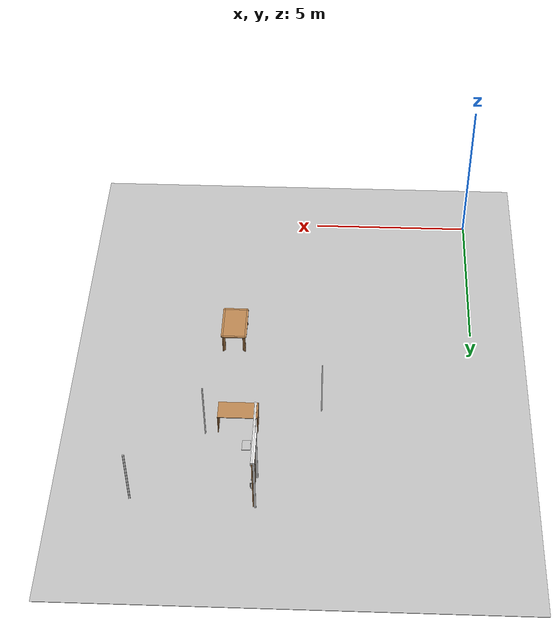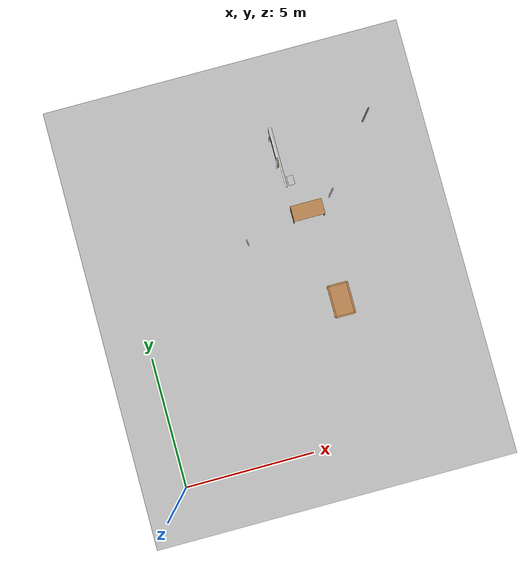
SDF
<sdf version="1.6">
 <world name="apartment">
  <model name="gplane">
   <pose>5.0375 6.59 0 0 -0 0</pose>
   <link name="body">
    <collision name="gplane_coll">
     <geometry><plane><normal>0 0 1</normal><size>10.075 13.18</size></plane></geometry>
     <surface><contact><ode><kp>1e+06</kp><kd>1</kd></ode></contact></surface>
     <laser_retro>2000</laser_retro>
    </collision>
    <visual name="gplane_vis">
     <geometry><plane><normal>0 0 1</normal><size>10.075 13.18</size></plane></geometry>
     <material>
      <script>
       <uri>model://base_materials/carpet/scripts</uri>
       <uri>model://base_materials/carpet/textures</uri>
       <name>carpet/carpet01</name>
      </script>
     </material>
     <cast_shadows>0</cast_shadows>
    </visual>
    <velocity_decay><linear>0</linear><angular>0</angular></velocity_decay>
   </link>
   <static>1</static>
  </model>
  <model name="door_stopper_x13y13">
   <link name="door_frame">
    <visual name="stopper">
     <pose>0.0225 0.0175 1.025 0 -0 0</pose>
     <geometry><box><size>0.01 0.035 2.05</size></box></geometry>
     <material>
      <script><uri>model://base_materials/color/scripts</uri><name>hsr_color/white</name></script>
     </material>
    </visual>
    <collision name="collision_frame_1">
     <pose>0.0225 0.0175 1.025 0 -0 0</pose>
     <geometry><box><size>0.01 0.035 2.05</size></box></geometry>
    </collision>
    <visual name="frame_2">
     <pose>-0.0225 0.0175 1.025 0 -0 0</pose>
     <geometry><box><size>0.01 0.035 2.05</size></box></geometry>
     <material>
      <script><uri>model://base_materials/color/scripts</uri><name>hsr_color/white</name></script>
     </material>
    </visual>
    <collision name="collision_frame_2">
     <pose>-0.0225 0.0175 1.025 0 -0 0</pose>
     <geometry><box><size>0.01 0.035 2.05</size></box></geometry>
    </collision>
   </link>
   <static>1</static>
   <pose>10.1025 11.67 0 0 -0 0</pose>
  </model>
  <model name="door_stopper_x08y09a">
   <link name="door_frame">
    <visual name="stopper">
     <pose>0.0225 0.0175 1.025 0 -0 0</pose>
     <geometry><box><size>0.01 0.035 2.05</size></box></geometry>
     <material>
      <script><uri>model://base_materials/color/scripts</uri><name>hsr_color/white</name></script>
     </material>
    </visual>
    <collision name="collision_frame_1">
     <pose>0.0225 0.0175 1.025 0 -0 0</pose>
     <geometry><box><size>0.01 0.035 2.05</size></box></geometry>
    </collision>
    <visual name="frame_2">
     <pose>-0.0225 0.0175 1.025 0 -0 0</pose>
     <geometry><box><size>0.01 0.035 2.05</size></box></geometry>
     <material>
      <script><uri>model://base_materials/color/scripts</uri><name>hsr_color/white</name></script>
     </material>
    </visual>
    <collision name="collision_frame_2">
     <pose>-0.0225 0.0175 1.025 0 -0 0</pose>
     <geometry><box><size>0.01 0.035 2.05</size></box></geometry>
    </collision>
   </link>
   <static>1</static>
   <pose>4.675 8.23 0 0 -0 1.5708</pose>
  </model>
  <model name="door_x08y13">
   <joint name="frame_to_world_joint" type="revolute">
    <parent>world</parent>
    <child>frame</child>
    <axis>
     <xyz>0 0 1</xyz>
     <limit><upper>0</upper><lower>0</lower></limit>
     <use_parent_model_frame>1</use_parent_model_frame>
     <dynamics><spring_reference>0</spring_reference><spring_stiffness>0</spring_stiffness></dynamics>
    </axis>
   </joint>
   <link name="frame">
    <inertial>
     <mass>50</mass>
     <inertia><ixx>1</ixx><ixy>0</ixy><ixz>0</ixz><iyy>1</iyy><iyz>0</iyz><izz>1</izz></inertia>
    </inertial>
    <visual name="right_frame">
     <pose>0 0.5325 0.995 0 -0 0</pose>
     <geometry><box><size>0.055 0.035 1.99</size></box></geometry>
     <material>
      <script><uri>model://base_materials/color/scripts</uri><name>hsr_color/white</name></script>
     </material>
    </visual>
    <collision name="collision_right_frame">
     <pose>0 0.5325 0.995 0 -0 0</pose>
     <geometry><box><size>0.055 0.035 1.99</size></box></geometry>
    </collision>
    <visual name="left_frame">
     <pose>0 -0.5325 0.995 0 -0 0</pose>
     <geometry><box><size>0.055 0.035 1.99</size></box></geometry>
     <material>
      <script><uri>model://base_materials/color/scripts</uri><name>hsr_color/white</name></script>
     </material>
    </visual>
    <collision name="collision_left_frame">
     <pose>0 -0.5325 0.995 0 -0 0</pose>
     <geometry><box><size>0.055 0.035 1.99</size></box></geometry>
    </collision>
    <visual name="top_frame">
     <pose>0 0 2.04 0 -0 0</pose>
     <geometry><box><size>0.055 1.1 0.1</size></box></geometry>
     <material>
      <script><uri>model://base_materials/color/scripts</uri><name>hsr_color/white</name></script>
     </material>
    </visual>
    <collision name="collision_top_frame">
     <pose>0 0 2.04 0 -0 0</pose>
     <geometry><box><size>0.055 1.1 0.1</size></box></geometry>
    </collision>
    <visual name="top_guard">
     <pose>0.05 -0.55 2.065 0 -0 0</pose>
     <geometry><box><size>0.045 2.2 0.05</size></box></geometry>
     <material>
      <script><uri>model://base_materials/color/scripts</uri><name>hsr_color/white</name></script>
     </material>
    </visual>
    <collision name="collision_top_guard">
     <pose>0.05 -0.55 2.065 0 -0 0</pose>
     <geometry><box><size>0.045 2.2 0.05</size></box></geometry>
    </collision>
    <visual name="front_guard">
     <pose>0.0825 -0.55 2.04 0 -0 0</pose>
     <geometry><box><size>0.02 2.2 0.1</size></box></geometry>
     <material>
      <script><uri>model://base_materials/color/scripts</uri><name>hsr_color/white</name></script>
     </material>
    </visual>
    <collision name="collision_front_guard">
     <pose>0.0825 -0.55 2.04 0 -0 0</pose>
     <geometry><box><size>0.02 2.2 0.1</size></box></geometry>
    </collision>
   </link>
   <link name="door">
    <pose>-0.0275 0 0 0 -0 0</pose>
    <visual name="glass">
     <pose>0.0775 0 1.025 0 -0 0</pose>
     <geometry><box><size>0.03 0.77 1.58</size></box></geometry>
     <material>
      <script>
       <name>hsr_color/white_transparency1</name>
       <name>hsr_color/cornflowerblue_transparency1</name>
       <uri>__default__</uri>
      </script>
     </material>
    </visual>
    <collision name="collision_glass">
     <pose>0.0775 0 1.025 0 -0 0</pose>
     <geometry><box><size>0.03 0.77 1.58</size></box></geometry>
    </collision>
    <visual name="top_frame">
     <pose>0.0775 0 1.9075 0 -0 0</pose>
     <geometry><box><size>0.03 1.1 0.185</size></box></geometry>
     <material>
      <script><uri>model://base_materials/wood/scripts/wood.material</uri><name>base_materials/wood</name></script>
     </material>
    </visual>
    <collision name="collision_top_frame">
     <pose>0.0775 0 1.9075 0 -0 0</pose>
     <geometry><box><size>0.03 1.1 0.185</size></box></geometry>
    </collision>
    <visual name="right_frame">
     <pose>0.0775 0.4675 1.025 0 -0 0</pose>
     <geometry><box><size>0.03 0.165 1.58</size></box></geometry>
     <material>
      <script><uri>model://base_materials/wood/scripts/wood.material</uri><name>base_materials/wood</name></script>
     </material>
    </visual>
    <collision name="collision_right_frame">
     <pose>0.0775 0.4675 1.025 0 -0 0</pose>
     <geometry><box><size>0.03 0.165 1.58</size></box></geometry>
    </collision>
    <visual name="left_frame">
     <pose>0.0775 -0.4675 1.025 0 -0 0</pose>
     <geometry><box><size>0.03 0.165 1.58</size></box></geometry>
     <material>
      <script><uri>model://base_materials/wood/scripts/wood.material</uri><name>base_materials/wood</name></script>
     </material>
    </visual>
    <collision name="collision_left_frame">
     <pose>0.0775 -0.4675 1.025 0 -0 0</pose>
     <geometry><box><size>0.03 0.165 1.58</size></box></geometry>
    </collision>
    <visual name="bottom_frame">
     <pose>0.0775 0 0.1425 0 -0 0</pose>
     <geometry><box><size>0.03 1.1 0.185</size></box></geometry>
     <material>
      <script><uri>model://base_materials/wood/scripts/wood.material</uri><name>base_materials/wood</name></script>
     </material>
    </visual>
    <collision name="collision_bottom_frame">
     <pose>0.0775 0 0.1425 0 -0 0</pose>
     <geometry><box><size>0.03 1.1 0.185</size></box></geometry>
    </collision>
    <visual name="handle_top_frame">
     <pose>0.0775 0.4675 1.0675 3.14159 1.57079 3.14159</pose>
     <geometry><cylinder><radius>0.0125</radius><length>0.125</length></cylinder></geometry>
     <material>
      <script><uri>model://base_materials/color/scripts</uri><name>hsr_color/grey</name></script>
     </material>
    </visual>
    <collision name="collision_handle_top_frame">
     <pose>0.0775 0.4675 1.0675 3.14159 1.57079 3.14159</pose>
     <geometry><cylinder><radius>0.0125</radius><length>0.125</length></cylinder></geometry>
    </collision>
    <visual name="handle_bottom_frame">
     <pose>0.0775 0.4675 0.8425 3.14159 1.57079 3.14159</pose>
     <geometry><cylinder><radius>0.0125</radius><length>0.125</length></cylinder></geometry>
     <material>
      <script><uri>model://base_materials/color/scripts</uri><name>hsr_color/grey</name></script>
     </material>
    </visual>
    <collision name="collision_handle_bottom_frame">
     <pose>0.0775 0.4675 0.8425 3.14159 1.57079 3.14159</pose>
     <geometry><cylinder><radius>0.0125</radius><length>0.125</length></cylinder></geometry>
    </collision>
    <visual name="handle_front_frame">
     <pose>0.14 0.4675 0.955 0 -0 0</pose>
     <geometry><cylinder><radius>0.0125</radius><length>0.225</length></cylinder></geometry>
     <material>
      <script><uri>model://base_materials/color/scripts</uri><name>hsr_color/grey</name></script>
     </material>
    </visual>
    <collision name="collision_handle_front_frame">
     <pose>0.14 0.4675 0.955 0 -0 0</pose>
     <geometry><cylinder><radius>0.0125</radius><length>0.225</length></cylinder></geometry>
    </collision>
    <visual name="handle_back_frame">
     <pose>0.015 0.4675 0.955 0 -0 0</pose>
     <geometry><cylinder><radius>0.0125</radius><length>0.225</length></cylinder></geometry>
     <material>
      <script><uri>model://base_materials/color/scripts</uri><name>hsr_color/grey</name></script>
     </material>
    </visual>
    <collision name="collision_handle_back_frame">
     <pose>0.015 0.4675 0.955 0 -0 0</pose>
     <geometry><cylinder><radius>0.0125</radius><length>0.225</length></cylinder></geometry>
    </collision>
    <visual name="handle_front_top_corner">
     <pose>0.14 0.4675 1.0675 0 -0 0</pose>
     <geometry><sphere><radius>0.0125</radius></sphere></geometry>
     <material>
      <script><uri>model://base_materials/color/scripts</uri><name>hsr_color/grey</name></script>
     </material>
    </visual>
    <collision name="collision_handle_front_top_corner">
     <pose>0.14 0.4675 1.0675 0 -0 0</pose>
     <geometry><sphere><radius>0.0125</radius></sphere></geometry>
    </collision>
    <visual name="handle_front_bottom_corner">
     <pose>0.14 0.4675 0.8425 0 -0 0</pose>
     <geometry><sphere><radius>0.0125</radius></sphere></geometry>
     <material>
      <script><uri>model://base_materials/color/scripts</uri><name>hsr_color/grey</name></script>
     </material>
    </visual>
    <collision name="collision_handle_front_bottom_corner">
     <pose>0.14 0.4675 0.8425 0 -0 0</pose>
     <geometry><sphere><radius>0.0125</radius></sphere></geometry>
    </collision>
    <visual name="handle_back_top_corner">
     <pose>0.015 0.4675 1.0675 0 -0 0</pose>
     <geometry><sphere><radius>0.0125</radius></sphere></geometry>
     <material>
      <script><uri>model://base_materials/color/scripts</uri><name>hsr_color/grey</name></script>
     </material>
    </visual>
    <collision name="collision_handle_back_top_corner">
     <pose>0.015 0.4675 1.0675 0 -0 0</pose>
     <geometry><sphere><radius>0.0125</radius></sphere></geometry>
    </collision>
    <visual name="handle_back_bottom_corner">
     <pose>0.015 0.4675 0.8425 0 -0 0</pose>
     <geometry><sphere><radius>0.0125</radius></sphere></geometry>
     <material>
      <script><uri>model://base_materials/color/scripts</uri><name>hsr_color/grey</name></script>
     </material>
    </visual>
    <collision name="collision_handle_back_bottom_corner">
     <pose>0.015 0.4675 0.8425 0 -0 0</pose>
     <geometry><sphere><radius>0.0125</radius></sphere></geometry>
    </collision>
    <visual name="handle_lock1">
     <pose>0.0775 0.4675 1.25 3.14159 1.57079 3.14159</pose>
     <geometry><cylinder><radius>0.02</radius><length>0.08</length></cylinder></geometry>
     <material>
      <script><uri>model://base_materials/color/scripts</uri><name>hsr_color/grey</name></script>
     </material>
    </visual>
    <collision name="collision_handle_lock1">
     <pose>0.0775 0.4675 1.25 3.14159 1.57079 3.14159</pose>
     <geometry><cylinder><radius>0.02</radius><length>0.08</length></cylinder></geometry>
    </collision>
    <visual name="handle_lock2">
     <pose>0.0775 0.4675 1.25 3.14159 1.57079 3.14159</pose>
     <geometry><cylinder><radius>0.015</radius><length>0.09</length></cylinder></geometry>
     <material>
      <script><uri>model://base_materials/color/scripts</uri><name>hsr_color/grey</name></script>
     </material>
    </visual>
    <collision name="collision_handle_lock2">
     <pose>0.0775 0.4675 1.25 3.14159 1.57079 3.14159</pose>
     <geometry><cylinder><radius>0.015</radius><length>0.09</length></cylinder></geometry>
    </collision>
    <velocity_decay><linear>0</linear><angular>0</angular></velocity_decay>
    <inertial>
     <inertia><ixx>1</ixx><ixy>0</ixy><ixz>0</ixz><iyy>1</iyy><iyz>0</iyz><izz>1</izz></inertia>
     <mass>1</mass>
    </inertial>
   </link>
   <joint name="top_sliding_joint" type="prismatic">
    <parent>frame</parent>
    <child>door</child>
    <axis>
     <dynamics>
      <damping>1</damping>
      <friction>1</friction>
      <spring_reference>0</spring_reference>
      <spring_stiffness>0</spring_stiffness>
     </dynamics>
     <limit><lower>-1</lower><upper>0</upper></limit>
     <xyz>0 1 0</xyz>
     <use_parent_model_frame>1</use_parent_model_frame>
    </axis>
   </joint>
   <static>0</static>
   <pose>6.47 11.35 0 0 -0 0</pose>
  </model>
  <model name="door_stopper_x10y11">
   <link name="door_frame">
    <visual name="stopper">
     <pose>0.0225 0.0175 1.025 0 -0 0</pose>
     <geometry><box><size>0.01 0.035 2.05</size></box></geometry>
     <material>
      <script><uri>model://base_materials/color/scripts</uri><name>hsr_color/white</name></script>
     </material>
    </visual>
    <collision name="collision_frame_1">
     <pose>0.0225 0.0175 1.025 0 -0 0</pose>
     <geometry><box><size>0.01 0.035 2.05</size></box></geometry>
    </collision>
    <visual name="frame_2">
     <pose>-0.0225 0.0175 1.025 0 -0 0</pose>
     <geometry><box><size>0.01 0.035 2.05</size></box></geometry>
     <material>
      <script><uri>model://base_materials/color/scripts</uri><name>hsr_color/white</name></script>
     </material>
    </visual>
    <collision name="collision_frame_2">
     <pose>-0.0225 0.0175 1.025 0 -0 0</pose>
     <geometry><box><size>0.01 0.035 2.05</size></box></geometry>
    </collision>
   </link>
   <static>1</static>
   <pose>8.13 9.23 0 0 -0 1.5708</pose>
  </model>
  <model name="office_desk02">
   <link name="link">
    <inertial>
     <mass>10</mass>
     <inertia><ixx>1</ixx><ixy>0</ixy><ixz>0</ixz><iyy>1</iyy><iyz>0</iyz><izz>1</izz></inertia>
    </inertial>
    <visual name="top_board">
     <pose>-0.3 0.6 0.69 0 -0 0</pose>
     <geometry><box><size>0.6 1.2 0.02</size></box></geometry>
     <material>
      <script>
       <uri>model://base_materials/wood/scripts/wood.material</uri>
       <name>base_materials/dark_wood</name>
      </script>
     </material>
    </visual>
    <collision name="collision_top_board">
     <pose>-0.3 0.6 0.69 0 -0 0</pose>
     <geometry><box><size>0.6 1.2 0.02</size></box></geometry>
    </collision>
    <visual name="left_board">
     <pose>-0.3 0.01 0.34 0 -0 0</pose>
     <geometry><box><size>0.6 0.02 0.68</size></box></geometry>
     <material>
      <script>
       <uri>model://base_materials/wood/scripts/wood.material</uri>
       <name>base_materials/dark_wood</name>
      </script>
     </material>
    </visual>
    <collision name="collision_left_board">
     <pose>-0.3 0.01 0.34 0 -0 0</pose>
     <geometry><box><size>0.6 0.02 0.68</size></box></geometry>
    </collision>
    <visual name="right_board">
     <pose>-0.3 1.19 0.34 0 -0 0</pose>
     <geometry><box><size>0.6 0.02 0.68</size></box></geometry>
     <material>
      <script>
       <uri>model://base_materials/wood/scripts/wood.material</uri>
       <name>base_materials/dark_wood</name>
      </script>
     </material>
    </visual>
    <collision name="collision_right_board">
     <pose>-0.3 1.19 0.34 0 -0 0</pose>
     <geometry><box><size>0.6 0.02 0.68</size></box></geometry>
    </collision>
    <visual name="center_board">
     <pose>-0.14 0.6 0.49 0 -0 0</pose>
     <geometry><box><size>0.02 1.16 0.4</size></box></geometry>
     <material>
      <script>
       <uri>model://base_materials/wood/scripts/wood.material</uri>
       <name>base_materials/dark_wood</name>
      </script>
     </material>
    </visual>
    <collision name="ollision_center_board">
     <pose>-0.14 0.6 0.49 0 -0 0</pose>
     <geometry><box><size>0.02 1.16 0.4</size></box></geometry>
    </collision>
    <velocity_decay><linear>0</linear><angular>0</angular></velocity_decay>
   </link>
   <static>1</static>
   <pose>6.54075 8.57188 0 0 0 -1.5708</pose>
  </model>
  <model name="lawn_garden">
   <link name="link">
    <inertial>
     <mass>10</mass>
     <inertia><ixx>1</ixx><ixy>0</ixy><ixz>0</ixz><iyy>1</iyy><iyz>0</iyz><izz>1</izz></inertia>
    </inertial>
    <visual name="lawn_garden">
     <pose>0 0 -0.011 0 -0 0</pose>
     <geometry><box><size>14.075 17.185 0.02</size></box></geometry>
     <material>
      <script>
       <uri>model://base_materials/lawn/scripts/lawn.material</uri>
       <uri>model://base_materials/lawn/textures</uri>
       <name>lawn/lawn01</name>
      </script>
     </material>
    </visual>
    <collision name="collision_lawn_garden">
     <pose>0 0 -0.011 0 -0 0</pose>
     <geometry><box><size>14.075 17.185 0.02</size></box></geometry>
    </collision>
    <velocity_decay><linear>0</linear><angular>0</angular></velocity_decay>
   </link>
   <static>1</static>
   <pose>5.375 6.59 0 0 -0 0</pose>
  </model>
  <model name="kitchen_table">
   <link name="link">
    <inertial>
     <mass>10</mass>
     <inertia><ixx>1</ixx><ixy>0</ixy><ixz>0</ixz><iyy>1</iyy><iyz>0</iyz><izz>1</izz></inertia>
    </inertial>
    <visual name="center_board">
     <pose>0 0 0.68 0 -0 0</pose>
     <geometry><box><size>0.68 1.13 0.04</size></box></geometry>
     <material>
      <script><uri>model://base_materials/wood/scripts/wood.material</uri><name>base_materials/wood</name></script>
     </material>
    </visual>
    <collision name="collision_center_board">
     <pose>0 0 0.68 0 -0 0</pose>
     <geometry><box><size>0.68 1.13 0.04</size></box></geometry>
    </collision>
    <visual name="front_board">
     <pose>0.37 0 0.68 0 -0 0</pose>
     <geometry><box><size>0.06 1.13 0.04</size></box></geometry>
     <material>
      <script><uri>model://base_materials/wood/scripts/wood.material</uri><name>base_materials/wood</name></script>
     </material>
    </visual>
    <collision name="collision_front_board">
     <pose>0.37 0 0.68 0 -0 0</pose>
     <geometry><box><size>0.06 1.13 0.04</size></box></geometry>
    </collision>
    <visual name="back_board">
     <pose>-0.37 0 0.68 0 -0 0</pose>
     <geometry><box><size>0.06 1.13 0.04</size></box></geometry>
     <material>
      <script><uri>model://base_materials/wood/scripts/wood.material</uri><name>base_materials/wood</name></script>
     </material>
    </visual>
    <collision name="collision_back_board">
     <pose>-0.37 0 0.68 0 -0 0</pose>
     <geometry><box><size>0.06 1.13 0.04</size></box></geometry>
    </collision>
    <visual name="right_board">
     <pose>0 0.595 0.68 0 -0 0</pose>
     <geometry><box><size>0.68 0.06 0.04</size></box></geometry>
     <material>
      <script><uri>model://base_materials/wood/scripts/wood.material</uri><name>base_materials/wood</name></script>
     </material>
    </visual>
    <collision name="collision_right_board">
     <pose>0 0.595 0.68 0 -0 0</pose>
     <geometry><box><size>0.68 0.06 0.04</size></box></geometry>
    </collision>
    <visual name="left_board">
     <pose>0 -0.595 0.68 0 -0 0</pose>
     <geometry><box><size>0.68 0.06 0.04</size></box></geometry>
     <material>
      <script><uri>model://base_materials/wood/scripts/wood.material</uri><name>base_materials/wood</name></script>
     </material>
    </visual>
    <collision name="collision_left_board">
     <pose>0 -0.595 0.68 0 -0 0</pose>
     <geometry><box><size>0.68 0.06 0.04</size></box></geometry>
    </collision>
    <visual name="front_right_corner_board">
     <pose>0.34 0.565 0.68 0 -0 0</pose>
     <geometry><cylinder><radius>0.06</radius><length>0.039</length></cylinder></geometry>
     <material>
      <script><uri>model://base_materials/wood/scripts/wood.material</uri><name>base_materials/wood</name></script>
     </material>
    </visual>
    <collision name="collision_front_right_corner_board">
     <pose>0.34 0.565 0.68 0 -0 0</pose>
     <geometry><cylinder><radius>0.06</radius><length>0.039</length></cylinder></geometry>
    </collision>
    <visual name="front_left_corner_board">
     <pose>0.34 -0.565 0.68 0 -0 0</pose>
     <geometry><cylinder><radius>0.06</radius><length>0.039</length></cylinder></geometry>
     <material>
      <script><uri>model://base_materials/wood/scripts/wood.material</uri><name>base_materials/wood</name></script>
     </material>
    </visual>
    <collision name="collision_front_left_corner_board">
     <pose>0.34 -0.565 0.68 0 -0 0</pose>
     <geometry><cylinder><radius>0.06</radius><length>0.039</length></cylinder></geometry>
    </collision>
    <visual name="front_back_right_corner_board">
     <pose>-0.34 0.565 0.68 0 -0 0</pose>
     <geometry><cylinder><radius>0.06</radius><length>0.039</length></cylinder></geometry>
     <material>
      <script><uri>model://base_materials/wood/scripts/wood.material</uri><name>base_materials/wood</name></script>
     </material>
    </visual>
    <collision name="collision_back_right_corner_board">
     <pose>-0.34 0.565 0.68 0 -0 0</pose>
     <geometry><cylinder><radius>0.06</radius><length>0.039</length></cylinder></geometry>
    </collision>
    <visual name="front_back_left_corner_board">
     <pose>-0.34 -0.565 0.68 0 -0 0</pose>
     <geometry><cylinder><radius>0.06</radius><length>0.039</length></cylinder></geometry>
     <material>
      <script><uri>model://base_materials/wood/scripts/wood.material</uri><name>base_materials/wood</name></script>
     </material>
    </visual>
    <collision name="collision_back_left_corner_board">
     <pose>-0.34 -0.565 0.68 0 -0 0</pose>
     <geometry><cylinder><radius>0.06</radius><length>0.039</length></cylinder></geometry>
    </collision>
    <visual name="front_left_corner_frame1">
     <pose>0.345858 -0.57086 0.33 0 -0 0</pose>
     <geometry><cylinder><radius>0.02</radius><length>0.66</length></cylinder></geometry>
     <material>
      <script><uri>model://base_materials/wood/scripts/wood.material</uri><name>base_materials/wood</name></script>
     </material>
    </visual>
    <collision name="collision_front_left_corner_frame1">
     <pose>0.345858 -0.57086 0.33 0 -0 0</pose>
     <geometry><cylinder><radius>0.02</radius><length>0.66</length></cylinder></geometry>
    </collision>
    <visual name="front_left_corner_frame2">
     <pose>0.317574 -0.54257 0.33 0 -0 0.7854</pose>
     <geometry><box><size>0.04 0.08 0.66</size></box></geometry>
     <material>
      <script><uri>model://base_materials/wood/scripts/wood.material</uri><name>base_materials/wood</name></script>
     </material>
    </visual>
    <collision name="collision_front_left_corner_frame2">
     <pose>0.317574 -0.54257 0.33 0 -0 0.7854</pose>
     <geometry><box><size>0.04 0.08 0.66</size></box></geometry>
    </collision>
    <visual name="front_left_corner_frame3">
     <pose>0.289289 -0.51429 0.33 0 -0 0</pose>
     <geometry><cylinder><radius>0.02</radius><length>0.66</length></cylinder></geometry>
     <material>
      <script><uri>model://base_materials/wood/scripts/wood.material</uri><name>base_materials/wood</name></script>
     </material>
    </visual>
    <collision name="collision_front_left_corner_frame3">
     <pose>0.289289 -0.51429 0.33 0 -0 0</pose>
     <geometry><cylinder><radius>0.02</radius><length>0.66</length></cylinder></geometry>
    </collision>
    <visual name="front_right_corner_frame1">
     <pose>0.345858 0.57086 0.33 0 -0 0</pose>
     <geometry><cylinder><radius>0.02</radius><length>0.66</length></cylinder></geometry>
     <material>
      <script><uri>model://base_materials/wood/scripts/wood.material</uri><name>base_materials/wood</name></script>
     </material>
    </visual>
    <collision name="collision_front_right_corner_frame1">
     <pose>0.345858 0.57086 0.33 0 -0 0</pose>
     <geometry><cylinder><radius>0.02</radius><length>0.66</length></cylinder></geometry>
    </collision>
    <visual name="front_right_corner_frame2">
     <pose>0.317574 0.54257 0.33 0 0 -0.7854</pose>
     <geometry><box><size>0.04 0.08 0.66</size></box></geometry>
     <material>
      <script><uri>model://base_materials/wood/scripts/wood.material</uri><name>base_materials/wood</name></script>
     </material>
    </visual>
    <collision name="collision_front_right_corner_frame2">
     <pose>0.317574 0.54257 0.33 0 0 -0.7854</pose>
     <geometry><box><size>0.04 0.08 0.66</size></box></geometry>
    </collision>
    <visual name="front_right_corner_frame3">
     <pose>0.289289 0.51429 0.33 0 -0 0</pose>
     <geometry><cylinder><radius>0.02</radius><length>0.66</length></cylinder></geometry>
     <material>
      <script><uri>model://base_materials/wood/scripts/wood.material</uri><name>base_materials/wood</name></script>
     </material>
    </visual>
    <collision name="collision_front_right_corner_frame3">
     <pose>0.289289 0.51429 0.33 0 -0 0</pose>
     <geometry><cylinder><radius>0.02</radius><length>0.66</length></cylinder></geometry>
    </collision>
    <visual name="back_left_corner_frame1">
     <pose>-0.345858 -0.57086 0.33 0 -0 0</pose>
     <geometry><cylinder><radius>0.02</radius><length>0.66</length></cylinder></geometry>
     <material>
      <script><uri>model://base_materials/wood/scripts/wood.material</uri><name>base_materials/wood</name></script>
     </material>
    </visual>
    <collision name="collision_back_left_corner_frame1">
     <pose>-0.345858 -0.57086 0.33 0 -0 0</pose>
     <geometry><cylinder><radius>0.02</radius><length>0.66</length></cylinder></geometry>
    </collision>
    <visual name="back_left_corner_frame2">
     <pose>-0.317574 -0.54257 0.33 0 0 -0.7854</pose>
     <geometry><box><size>0.04 0.08 0.66</size></box></geometry>
     <material>
      <script><uri>model://base_materials/wood/scripts/wood.material</uri><name>base_materials/wood</name></script>
     </material>
    </visual>
    <collision name="collision_back_left_corner_frame2">
     <pose>-0.317574 -0.54257 0.33 0 0 -0.7854</pose>
     <geometry><box><size>0.04 0.08 0.66</size></box></geometry>
    </collision>
    <visual name="back_left_corner_frame3">
     <pose>-0.289289 -0.51429 0.33 0 -0 0</pose>
     <geometry><cylinder><radius>0.02</radius><length>0.66</length></cylinder></geometry>
     <material>
      <script><uri>model://base_materials/wood/scripts/wood.material</uri><name>base_materials/wood</name></script>
     </material>
    </visual>
    <collision name="collision_back_left_corner_frame3">
     <pose>-0.289289 -0.51429 0.33 0 -0 0</pose>
     <geometry><cylinder><radius>0.02</radius><length>0.66</length></cylinder></geometry>
    </collision>
    <visual name="back_right_corner_frame1">
     <pose>-0.345858 0.57086 0.33 0 -0 0</pose>
     <geometry><cylinder><radius>0.02</radius><length>0.66</length></cylinder></geometry>
     <material>
      <script><uri>model://base_materials/wood/scripts/wood.material</uri><name>base_materials/wood</name></script>
     </material>
    </visual>
    <collision name="collision_back_right_corner_frame1">
     <pose>-0.345858 0.57086 0.33 0 -0 0</pose>
     <geometry><cylinder><radius>0.02</radius><length>0.66</length></cylinder></geometry>
    </collision>
    <visual name="back_right_corner_frame2">
     <pose>-0.317574 0.54257 0.33 0 -0 0.7854</pose>
     <geometry><box><size>0.04 0.08 0.66</size></box></geometry>
     <material>
      <script><uri>model://base_materials/wood/scripts/wood.material</uri><name>base_materials/wood</name></script>
     </material>
    </visual>
    <collision name="collision_back_right_corner_frame2">
     <pose>-0.317574 0.54257 0.33 0 -0 0.7854</pose>
     <geometry><box><size>0.04 0.08 0.66</size></box></geometry>
    </collision>
    <visual name="back_right_corner_frame3">
     <pose>-0.289289 0.51429 0.33 0 -0 0</pose>
     <geometry><cylinder><radius>0.02</radius><length>0.66</length></cylinder></geometry>
     <material>
      <script><uri>model://base_materials/wood/scripts/wood.material</uri><name>base_materials/wood</name></script>
     </material>
    </visual>
    <collision name="collision_back_right_corner_frame3">
     <pose>-0.289289 0.51429 0.33 0 -0 0</pose>
     <geometry><cylinder><radius>0.02</radius><length>0.66</length></cylinder></geometry>
    </collision>
    <velocity_decay><linear>0</linear><angular>0</angular></velocity_decay>
   </link>
   <static>1</static>
   <pose>7.47246 5.31635 0 0 -0 0</pose>
  </model>
  <model name="newspaper_1">
   <link name="link_0">
    <visual name="visual">
     <geometry><box><size>0.35 0.25 0.02</size></box></geometry>
     <material>
      <script>
       <uri>model://newspaper_1/materials/scripts</uri>
       <uri>model://newspaper_1/materials/textures</uri>
       <name>newspaper_1</name>
      </script>
     </material>
    </visual>
    <collision name="collision"><geometry><box><size>0.35 0.25 0.02</size></box></geometry></collision>
   </link>
   <static>1</static>
   <pose>6.81827 10.1227 0.618129 0 -0 1.5708</pose>
  </model>
 </world>
</sdf>
